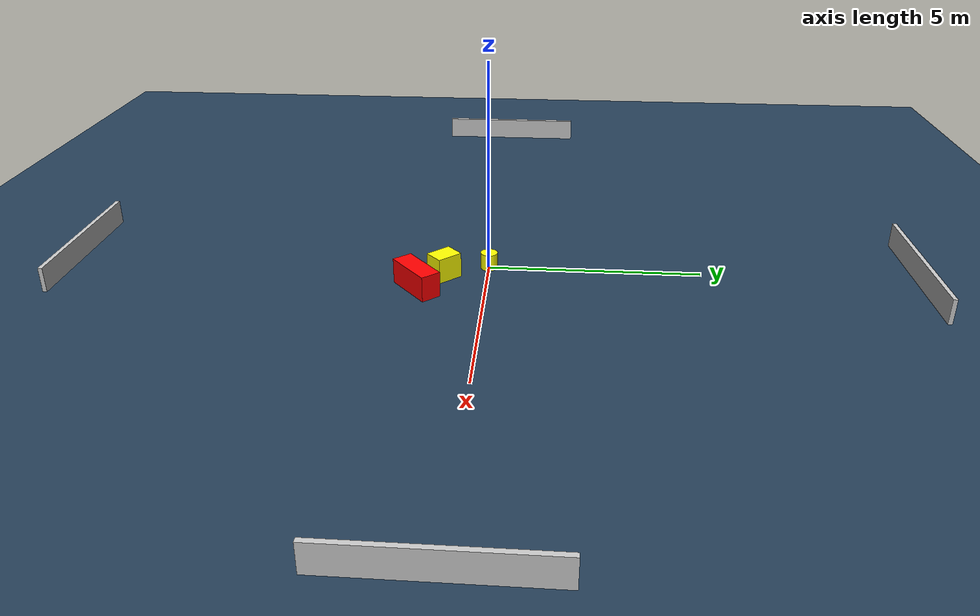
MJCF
<?xml version="1.0" ?>
<mujoco model="generated_environment">
  <option timestep="0.01" integrator="RK4" cone="elliptic"/>
  <default>
    <geom density="1"/>
  </default>
  <asset>
    <texture builtin="gradient" height="3072" name="skybox" rgb1="0.3 0.5 0.7" rgb2="0 0 0" type="skybox" width="512"/>
    <texture builtin="checker" height="300" name="groundplane" rgb1="0.2 0.3 0.4" rgb2="0.1 0.2 0.3" type="2d" width="300"/>
    <material name="groundplane" reflectance="0.2" texrepeat="5 5" texture="groundplane"/>
  </asset>
  <worldbody>
    <light dir="0 0 -1" directional="true" pos="0 0 1.5"/>
    <geom condim="3" friction="0.5 0.005 0.001" material="groundplane" name="floor" pos="0 0 0" size="0 0 0.05" type="plane"/>
    <body name="walls">
      <geom name="wall_1" condim="4" pos="-10.0 0.0 0.3" rgba="0.800000011920929 0.800000011920929 0.800000011920929 1.0" size="0.05 2.0 0.3" type="box"/>
      <geom name="wall_2" condim="4" pos="10.0 0.0 0.3" rgba="0.800000011920929 0.800000011920929 0.800000011920929 1.0" size="0.05 2.0 0.3" type="box"/>
      <geom name="wall_3" condim="4" pos="0.0 -10.0 0.3" rgba="0.800000011920929 0.800000011920929 0.800000011920929 1.0" size="2.0 0.05 0.3" type="box"/>
      <geom name="wall_4" condim="4" pos="0.0 10.0 0.3" rgba="0.800000011920929 0.800000011920929 0.800000011920929 1.0" size="2.0 0.05 0.3" type="box"/>
    </body>
    <body name="robot">
      <joint name="joint_x" type="slide" pos="0 0 0" axis="1 0 0"/>
      <joint name="joint_y" type="slide" pos="0 0 0" axis="0 1 0"/>
      <geom name="robot" type="cylinder" pos="0.0 0.0 0.2" size="0.2 0.2 0.0" mass="5.0" friction="1.0 0.005 0.0001" condim="4" rgba="1.0 1.0 0.0 1.0"/>
    </body>
    <body name="obstacle_1_movable">
      <geom name="obstacle_1_movable" condim="4" pos="0.5431397393415068 -1.0143085572404116 0.3" euler="0 0 133.03606010175997" friction="0.0 0.005 0.001" rgba="1.0 1.0 0.0 1.0" size="0.3134336011205108 0.2405467185867367 0.3" type="box" mass="0.1"/>
      <joint type="free"/>
    </body>
    <body name="obstacle_2_static">
      <geom name="obstacle_2_static" condim="4" pos="1.2260944536512715 -1.5713564394422876 0.3" euler="0 0 40.712588846810156" friction="0.0 0.005 0.001" rgba="1.0 0.0 0.0 1.0" size="0.6078841349466907 0.24068378287262968 0.3" type="box"/>
    </body>
  </worldbody>
  <actuator>
    <motor name="actuator_x" joint="joint_x" gear="1" ctrlrange="-1 1"/>
    <motor name="actuator_y" joint="joint_y" gear="1" ctrlrange="-1 1"/>
  </actuator>
</mujoco>
